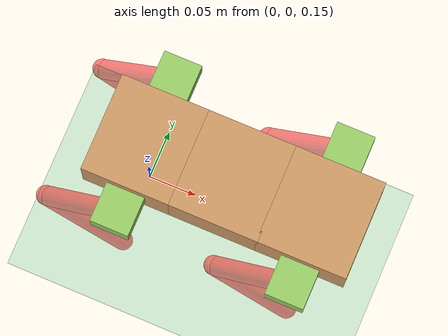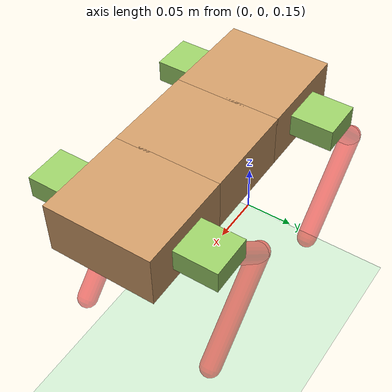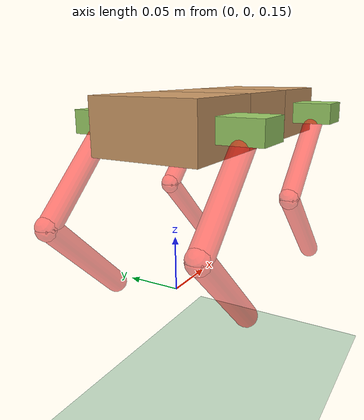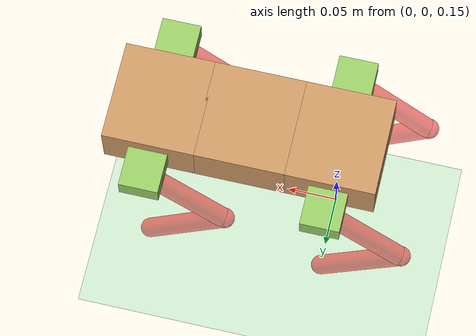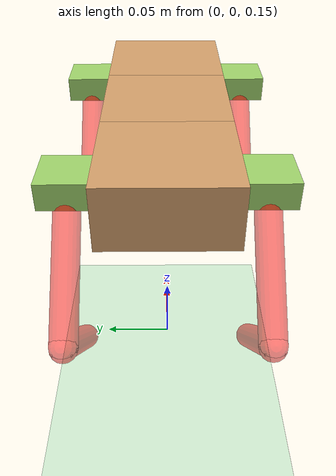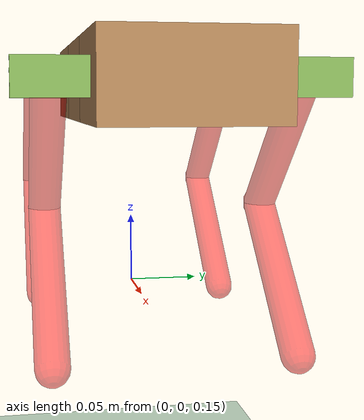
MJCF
<mujoco model="pupper_flexible">
<compiler angle="radian" coordinate="local" inertiafromgeom="false"/>

<default>
    <joint armature="0.01936" stiffness="0"/>
    <geom conaffinity="0" condim="3" contype="1" friction="1.5 .1 .1" rgba="0.8 0.6 .4 1"/>
    <position forcelimited="true"/>
</default>

<size nstack="300000" nuser_geom="1"/>
<option gravity="0 0 -9.81" timestep="0.01"/>

<asset>
    <texture builtin="gradient" height="100" rgb1="1 1 1" rgb2="0 0 0" type="skybox" width="100"/>
    <texture builtin="flat" height="1278" mark="cross" markrgb="1 1 1" name="texgeom" random="0.01" rgb1="0.8 0.6 0.4" rgb2="0.8 0.6 0.4" type="cube" width="127"/>
    <texture builtin="checker" height="100" name="texplane" rgb1="0 0 0" rgb2="0.8 0.8 0.8" type="2d" width="100"/>
    <material name="MatPlane" reflectance="0.5" shininess="1" specular="1" texrepeat="60 60" texture="texplane"/>
    <material name="geom" texture="texgeom" texuniform="true"/>
</asset>

<worldbody>
    <light cutoff="100" diffuse="1 1 1" dir="-0 0 -1.3" directional="true" exponent="1" pos="0 0 1.3" specular=".1 .1 .1"/>
    <geom conaffinity="1" condim="3" material="MatPlane" name="floor" pos="0 0 0" rgba="0.8 0.9 0.8 1" size="40 40 40" type="plane"/>
    <body name="torso_1" pos="0 0 0.3">
        <camera name="track" mode="trackcom" pos="0 -2 0.3" xyaxes="1 0 0 0 0 1"/>
        <joint armature="0" axis="1 0 0" damping="0" limited="false" name="rootx" pos="0 0 0" stiffness="0" type="slide"/>
        <joint armature="0" axis="0 0 1" damping="0" limited="false" name="rootz" pos="0 0 0" stiffness="0" type="slide"/>
        <joint armature="0" axis="0 1 0" damping="0" limited="false" name="rooty" pos="0 0 0" stiffness="0" type="hinge"/>
        <inertial pos="0 0 0" mass="0.28" diaginertia="0.0005532 0.0037619999999999997 0.004011000000000001"/>
        <geom pos="0 0 0" name="torso_1" size="0.046 0.05 0.025" type="box"/>
        <site name="imu_site" pos="0 0 0" size=".01 .01 .01" type="box"/>

        <body name="torso_2" pos="0.09 0 0">
            <joint axis="0 1 0" name="torso_joint_1" pos="0 0 -0.025" range="-0.523 0.523" type="hinge" stiffness= "50"/>
            <inertial pos="0 0 0" mass="0.28" diaginertia="0.0005532 0.0037619999999999997 0.004011000000000001"/>

            <geom pos="0 0 0" name="torso_2" size="0.046 0.05 0.025" type="box"/>

            <body name="torso_3" pos="0.09 0 0">
                <joint axis="0 1 0" name="torso_joint_2" pos="0 0 0" range="-0.523 0.523" type="hinge" stiffness="10"/>
                <inertial pos="0 0 0" mass="0.28" diaginertia="0.0005532 0.0037619999999999997 0.004011000000000001"/>

                <geom pos="0 0 0" name="torso_3" size="0.046  0.05 0.025" type="box"/>

                <body name="fr_module" pos="0.0 -0.04 0">
                    <geom pos="0 -0.0132 0" name="fr_block" type="box" size="0.0197 0.0372 0.0107" rgba="0.6 0.8 .4 1"/>
                    <joint axis="1 0 0" name="fr_x" pos="0 0 0" limited="true" range="-1.57 1.57" type="hinge" damping="1.049" stiffness="10"/>
                    <inertial pos="0 0 0" mass="0.08" diaginertia="3.698e-05 7.127e-06 4.075e-05"/>
                    <body name="fr" pos="0 -0.03 0">
                        <joint axis="0 1 0" name="fr_y" pos="0 0 0" limited="true" range="-1.57 1.57" type="hinge" damping="1.049"/>
                        <inertial pos="0 0 0" mass="0.03" diaginertia="1.3020833333333332e-05 1.3020833333333332e-05 1e-06"/>
                        <geom axisangle="0 1 0 0" name="fr" fromto="0 0 0 -0.08 0 -0.08" size="0.01" type="capsule" rgba = "1 0 0 0.5" density="50"/>
                        <body name="fr2" pos="-0.08 0 -0.0782">
                            <joint axis="0 1 0" name="fr_y2" pos="0 0 0" limited="true" range="-3.14 0.0" type="hinge" damping="1.049"/>
                            <inertial pos="0 0 0" mass="0.03" diaginertia="1.3020833333333332e-05 1.3020833333333332e-05 1e-06"/>
                            <geom axisangle="0 1 0 0" name="fr_l2" fromto="0 0 0 0.08 0 -0.08" size="0.01" type="capsule" rgba="1 0 0 0.5" density="50"/>
                        </body>
                    </body>
                </body>

                <body name="fl_module" pos="0.0 0.04 0">
                    <geom pos = "0 0.0132 0" name="fl_block" type="box" size="0.0197 0.0372 0.0107" rgba="0.6 0.8 .4 1"/>
                    <joint axis="1 0 0" name="fl_x" pos="0 0 0" limited="true" range="-1.57 1.57" type="hinge" damping="1.049" stiffness="10"/>
                    <inertial pos="0 0 0" mass="0.08" diaginertia="3.698e-05 7.127e-06 4.075e-05"/>
                    <body name="fl" pos="0 0.03 0">
                        <joint axis="0 1 0" name="fl_y" pos="0 0 0" limited="true" range="-1.57 1.57" type="hinge" damping="1.049"/>
                        <inertial pos="0 0 0" mass="0.03" diaginertia="1.3020833333333332e-05 1.3020833333333332e-05 1e-06"/>
                        <geom axisangle="0 1 0 0" name="fl" fromto="0 0 0 -0.08 0 -0.08" size="0.01" type="capsule" rgba = "1 0 0 0.5" density="50"/>
                        <body name="fl2" pos="-0.08 0 -0.0782">
                            <joint axis="0 1 0" name="fl_y2" pos="0 0 0" limited="true" range="-3.14 0.0" type="hinge" damping="1.049"/>
                            <inertial pos="0 0 0" mass="0.03" diaginertia="1.3020833333333332e-05 1.3020833333333332e-05 1e-06"/>
                            <geom axisangle="0 1 0 0" name="fl_l2" fromto="0 0 0 0.08 0 -0.08" size="0.01" type="capsule" rgba="1 0 0 0.5" density="50"/>
                        </body>
                    </body>
                </body>
            </body>
        </body>

        <body name="br_module" pos="-0.0 -0.04 0">
            <geom pos = "0 -0.0132 0" name="br_block" type="box" size="0.0197 0.0372 0.0107" rgba="0.6 0.8 .4 1"/>
            <joint axis="1 0 0" name="br_x" pos="0 0 0" limited="true" range="-1.57 1.57" type="hinge" damping="1.049" stiffness="10"/>
            <inertial pos="0 0 0" mass="0.08" diaginertia="3.698e-05 7.127e-06 4.075e-05"/>
            <body name="br" pos="0 -0.03 0">
                <joint axis="0 1 0" name="br_y" pos="0 0 0" limited="true" range="-1.57 1.57" type="hinge" damping="1.049"/>
                <inertial pos="0 0 0" mass="0.03" diaginertia="1.3020833333333332e-05 1.3020833333333332e-05 1e-06"/>
                <geom axisangle="0 1 0 0" name="br" fromto="0 0 0 -0.08 0 -0.08" size="0.01" type="capsule" rgba = "1 0 0 0.5" density="50"/>
                <body name="br2" pos="-0.08 0 -0.0782">
                    <joint axis="0 1 0" name="br_y2" pos="0 0 0" limited="true" range="-3.14 0.0" type="hinge" damping="1.049"/>
                    <inertial pos="0 0 0" mass="0.03" diaginertia="1.3020833333333332e-05 1.3020833333333332e-05 1e-06"/>
                    <geom axisangle="0 1 0 0" name="br_l2" fromto="0 0 0 0.08 0 -0.08" size="0.01" type="capsule" rgba="1 0 0 0.5" density="50"/>
                </body>
            </body>
        </body>

        <body name="bl_module" pos="-0.0 0.04 0">
            <geom pos = "0 0.0132 0" name="bl_block" type="box" size="0.0197 0.0372 0.0107" rgba="0.6 0.8 .4 1"/>
            <joint axis="1 0 0" name="bl_x" pos="0 0 0" limited="true" range="-1.57 1.57" type="hinge" damping="1.049" stiffness="10"/>
            <inertial pos="0 0 0" mass="0.08" diaginertia="3.698e-05 7.127e-06 4.075e-05"/>
            <body name="bl" pos="0 0.03 0">
                <joint axis="0 1 0" name="bl_y" pos="0 0 0" limited="true" range="-1.57 1.57" type="hinge" damping="1.049"/>
                <inertial pos="0 0 0" mass="0.03" diaginertia="1.3020833333333332e-05 1.3020833333333332e-05 1e-06"/>
                <geom axisangle="0 1 0 0" name="bl" fromto="0 0 0 -0.08 0 -0.08" size="0.01" type="capsule" rgba = "1 0 0 0.5" density="50"/>
                <body name="bl2" pos="-0.08 0 -0.0782">
                    <joint axis="0 1 0" name="bl_y2" pos="0 0 0" limited="true" range="-3.14 0.0" type="hinge" damping="1.049"/>
                    <inertial pos="0 0 0" mass="0.03" diaginertia="1.3020833333333332e-05 1.3020833333333332e-05 1e-06"/>
                    <geom axisangle="0 1 0 0" name="bl_l2" fromto="0 0 0 0.08 0 -0.08" size="0.01" type="capsule" rgba="1 0 0 0.5" density="50"/>
                </body>
            </body>
        </body>
    </body>
</worldbody>

<actuator>
    <position gear="1" joint="fr_y" name="fr_y" kp="300" forcerange="-6.0 6.0"/>
    <position gear="1" joint="fr_y2" name="fr_y2" kp="300" forcerange="-6.0 6.0"/>

    <position gear="1" joint="fl_y" name="fl_y" kp="300" forcerange="-6.0 6.0"/>
    <position gear="1" joint="fl_y2" name="fl_y2" kp="300" forcerange="-6.0 6.0"/>

    <position gear="1" joint="br_y" name="br_y" kp="300" forcerange="-6.0 6.0"/>
    <position gear="1" joint="br_y2" name="br_y2" kp="300" forcerange="-6.0 6.0"/>

    <position gear="1" joint="bl_y" name="bl_y" kp="300" forcerange="-6.0 6.0"/>
    <position gear="1" joint="bl_y2" name="bl_y2" kp="300" forcerange="-6.0 6.0"/>

</actuator>
</mujoco>
